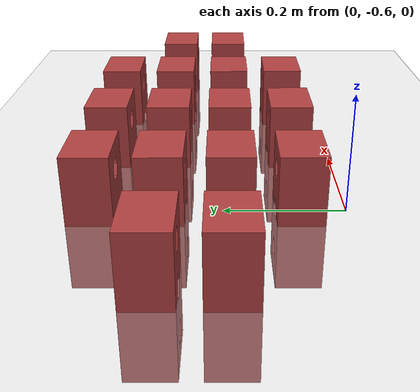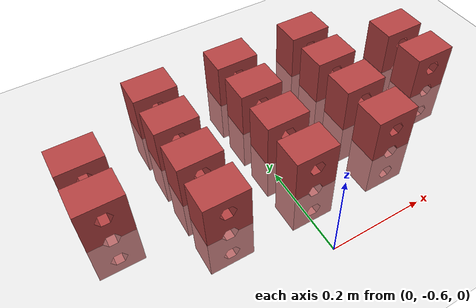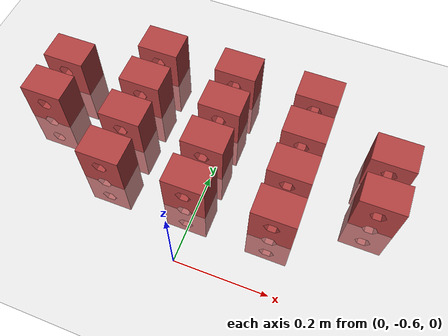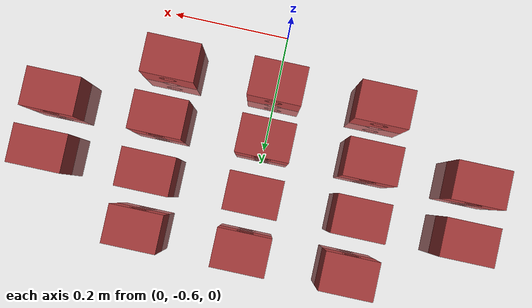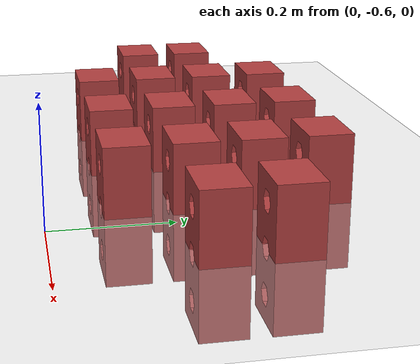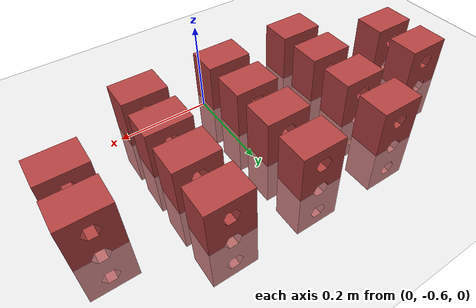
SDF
<sdf version="1.6">
 <world name="default">
  <light name="sun" type="directional">
   <pose>0 0 10 0 -0 0</pose>
   <diffuse>0.8 0.8 0.8 1</diffuse>
   <specular>0.2 0.2 0.2 1</specular>
   <attenuation>
    <range>1000</range>
    <constant>0.9</constant>
    <linear>0.01</linear>
    <quadratic>0.001</quadratic>
   </attenuation>
   <direction>-0.5 0.1 -0.9</direction>
  </light>
  <model name="ground_plane">
   <pose>0.34 -0.32 0.1 -1.57059 1.57059 3.14159</pose>
   <static>1</static>
   <link name="link">
    <collision name="collision">
     <geometry><plane><normal>0 0 1</normal><size>100 100</size></plane></geometry>
     <surface>
      <contact><collide_bitmask>65535</collide_bitmask></contact>
      <friction><ode><mu>100</mu><mu2>50</mu2></ode></friction>
     </surface>
    </collision>
    <visual name="visual">
     <cast_shadows>0</cast_shadows>
     <geometry><plane><normal>0 0 1</normal><size>100 100</size></plane></geometry>
     <material>
      <script><uri>file://media/materials/scripts/gazebo.material</uri><name>Gazebo/Grey</name></script>
     </material>
    </visual>
   </link>
  </model>
  <gravity>0 0 -9.8</gravity>
  <magnetic_field>6e-06 2.3e-05 -4.2e-05</magnetic_field>
  <atmosphere type="adiabatic"/>
  <physics name="default_physics" default="0" type="ode">
   <max_step_size>0.001</max_step_size>
   <real_time_factor>1</real_time_factor>
   <real_time_update_rate>1000</real_time_update_rate>
  </physics>
  <scene><ambient>0.4 0.4 0.4 1</ambient><background>0.7 0.7 0.7 1</background><shadows>1</shadows></scene>
  <audio><device>default</device></audio>
  <spherical_coordinates>
   <surface_model>EARTH_WGS84</surface_model>
   <latitude_deg>0</latitude_deg>
   <longitude_deg>0</longitude_deg>
   <elevation>0</elevation>
   <heading_deg>0</heading_deg>
  </spherical_coordinates>
  <model name="Brick">
   <link name="Brick">
    <inertial>
     <mass>0.1</mass>
     <inertia><ixx>0.0017</ixx><ixy>0</ixy><ixz>0</ixz><iyy>0.0017</iyy><iyz>0</iyz><izz>0.0017</izz></inertia>
    </inertial>
    <collision name="Brick_collision">
     <pose>0 0 0 1.5708 -0 0</pose>
     <geometry><box><size>0.192 0.062 0.086</size></box></geometry>
     <surface>
      <friction><ode><mu>100</mu><mu2>50</mu2><fdir1>0 0 1</fdir1><slip1>0</slip1><slip2>0</slip2></ode></friction>
      <contact><ode><kp>100000</kp><kd>10</kd><max_vel>2</max_vel><min_depth>0.0001</min_depth></ode></contact>
     </surface>
    </collision>
    <visual name="Brick_visual">
     <pose>0 0 0 1.5708 -0 0</pose>
     <geometry><mesh><scale>1 1 1</scale><uri>model://Brick/meshes/Brick_1.STL</uri></mesh></geometry>
     <material>
      <ambient>0.698 0.25 0.25 1</ambient>
      <diffuse>0.698 0.25 0.25 1</diffuse>
      <specular>0.1 0.1 0.1 1</specular>
      <emissive>0 0 0 0</emissive>
     </material>
    </visual>
   </link>
   <pose>0.34 -0.32 0.1 -3.13677 1.57059 1.57583</pose>
  </model>
  <model name="Brick_0">
   <link name="Brick">
    <inertial>
     <mass>0.1</mass>
     <inertia><ixx>0.0017</ixx><ixy>0</ixy><ixz>0</ixz><iyy>0.0017</iyy><iyz>0</iyz><izz>0.0017</izz></inertia>
    </inertial>
    <collision name="Brick_collision">
     <pose>0 0 0 1.5708 -0 0</pose>
     <geometry><box><size>0.192 0.062 0.086</size></box></geometry>
     <surface>
      <friction><ode><mu>100</mu><mu2>50</mu2><fdir1>0 0 1</fdir1><slip1>0</slip1><slip2>0</slip2></ode></friction>
      <contact><ode><kp>100000</kp><kd>10</kd><max_vel>2</max_vel><min_depth>0.0001</min_depth></ode></contact>
     </surface>
    </collision>
    <visual name="Brick_visual">
     <pose>0 0 0 1.5708 -0 0</pose>
     <geometry><mesh><scale>1 1 1</scale><uri>model://Brick/meshes/Brick_1.STL</uri></mesh></geometry>
     <material>
      <ambient>0.698 0.25 0.25 1</ambient>
      <diffuse>0.698 0.25 0.25 1</diffuse>
      <specular>0.1 0.1 0.1 1</specular>
      <emissive>0 0 0 0</emissive>
     </material>
    </visual>
   </link>
   <pose>0.17 -0.32 0.1 3.14149 1.57059 -1.57069</pose>
  </model>
  <model name="Brick_1">
   <link name="Brick">
    <inertial>
     <mass>0.1</mass>
     <inertia><ixx>0.0017</ixx><ixy>0</ixy><ixz>0</ixz><iyy>0.0017</iyy><iyz>0</iyz><izz>0.0017</izz></inertia>
    </inertial>
    <collision name="Brick_collision">
     <pose>0 0 0 1.5708 -0 0</pose>
     <geometry><box><size>0.192 0.062 0.086</size></box></geometry>
     <surface>
      <friction><ode><mu>100</mu><mu2>50</mu2><fdir1>0 0 1</fdir1><slip1>0</slip1><slip2>0</slip2></ode></friction>
      <contact><ode><kp>100000</kp><kd>10</kd><max_vel>2</max_vel><min_depth>0.0001</min_depth></ode></contact>
     </surface>
    </collision>
    <visual name="Brick_visual">
     <pose>0 0 0 1.5708 -0 0</pose>
     <geometry><mesh><scale>1 1 1</scale><uri>model://Brick/meshes/Brick_1.STL</uri></mesh></geometry>
     <material>
      <ambient>0.698 0.25 0.25 1</ambient>
      <diffuse>0.698 0.25 0.25 1</diffuse>
      <specular>0.1 0.1 0.1 1</specular>
      <emissive>0 0 0 0</emissive>
     </material>
    </visual>
   </link>
   <pose>0 -0.32 0.1 3.14159 1.57059 -1.57059</pose>
  </model>
  <model name="Brick_2">
   <link name="Brick">
    <inertial>
     <mass>0.1</mass>
     <inertia><ixx>0.0017</ixx><ixy>0</ixy><ixz>0</ixz><iyy>0.0017</iyy><iyz>0</iyz><izz>0.0017</izz></inertia>
    </inertial>
    <collision name="Brick_collision">
     <pose>0 0 0 1.5708 -0 0</pose>
     <geometry><box><size>0.192 0.062 0.086</size></box></geometry>
     <surface>
      <friction><ode><mu>100</mu><mu2>50</mu2><fdir1>0 0 1</fdir1><slip1>0</slip1><slip2>0</slip2></ode></friction>
      <contact><ode><kp>100000</kp><kd>10</kd><max_vel>2</max_vel><min_depth>0.0001</min_depth></ode></contact>
     </surface>
    </collision>
    <visual name="Brick_visual">
     <pose>0 0 0 1.5708 -0 0</pose>
     <geometry><mesh><scale>1 1 1</scale><uri>model://Brick/meshes/Brick_1.STL</uri></mesh></geometry>
     <material>
      <ambient>0.698 0.25 0.25 1</ambient>
      <diffuse>0.698 0.25 0.25 1</diffuse>
      <specular>0.1 0.1 0.1 1</specular>
      <emissive>0 0 0 0</emissive>
     </material>
    </visual>
   </link>
   <pose>-0.17 -0.32 0.1 3.14159 1.57059 -1.57059</pose>
  </model>
  <model name="Brick_3">
   <link name="Brick">
    <inertial>
     <mass>0.1</mass>
     <inertia><ixx>0.0017</ixx><ixy>0</ixy><ixz>0</ixz><iyy>0.0017</iyy><iyz>0</iyz><izz>0.0017</izz></inertia>
    </inertial>
    <collision name="Brick_collision">
     <pose>0 0 0 1.5708 -0 0</pose>
     <geometry><box><size>0.192 0.062 0.086</size></box></geometry>
     <surface>
      <friction><ode><mu>100</mu><mu2>50</mu2><fdir1>0 0 1</fdir1><slip1>0</slip1><slip2>0</slip2></ode></friction>
      <contact><ode><kp>100000</kp><kd>10</kd><max_vel>2</max_vel><min_depth>0.0001</min_depth></ode></contact>
     </surface>
    </collision>
    <visual name="Brick_visual">
     <pose>0 0 0 1.5708 -0 0</pose>
     <geometry><mesh><scale>1 1 1</scale><uri>model://Brick/meshes/Brick_1.STL</uri></mesh></geometry>
     <material>
      <ambient>0.698 0.25 0.25 1</ambient>
      <diffuse>0.698 0.25 0.25 1</diffuse>
      <specular>0.1 0.1 0.1 1</specular>
      <emissive>0 0 0 0</emissive>
     </material>
    </visual>
   </link>
   <pose>-0.34 -0.32 0.1 3.14159 1.57059 -1.57059</pose>
  </model>
  <model name="Brick_4">
   <link name="Brick">
    <inertial>
     <mass>0.1</mass>
     <inertia><ixx>0.0017</ixx><ixy>0</ixy><ixz>0</ixz><iyy>0.0017</iyy><iyz>0</iyz><izz>0.0017</izz></inertia>
    </inertial>
    <collision name="Brick_collision">
     <pose>0 0 0 1.5708 -0 0</pose>
     <geometry><box><size>0.192 0.062 0.086</size></box></geometry>
     <surface>
      <friction><ode><mu>100</mu><mu2>50</mu2><fdir1>0 0 1</fdir1><slip1>0</slip1><slip2>0</slip2></ode></friction>
      <contact><ode><kp>100000</kp><kd>10</kd><max_vel>2</max_vel><min_depth>0.0001</min_depth></ode></contact>
     </surface>
    </collision>
    <visual name="Brick_visual">
     <pose>0 0 0 1.5708 -0 0</pose>
     <geometry><mesh><scale>1 1 1</scale><uri>model://Brick/meshes/Brick_1.STL</uri></mesh></geometry>
     <material>
      <ambient>0.698 0.25 0.25 1</ambient>
      <diffuse>0.698 0.25 0.25 1</diffuse>
      <specular>0.1 0.1 0.1 1</specular>
      <emissive>0 0 0 0</emissive>
     </material>
    </visual>
   </link>
   <pose>0.34 -0.41 0.1 3.14159 1.57059 -1.57059</pose>
  </model>
  <model name="Brick_5">
   <link name="Brick">
    <inertial>
     <mass>0.1</mass>
     <inertia><ixx>0.0017</ixx><ixy>0</ixy><ixz>0</ixz><iyy>0.0017</iyy><iyz>0</iyz><izz>0.0017</izz></inertia>
    </inertial>
    <collision name="Brick_collision">
     <pose>0 0 0 1.5708 -0 0</pose>
     <geometry><box><size>0.192 0.062 0.086</size></box></geometry>
     <surface>
      <friction><ode><mu>100</mu><mu2>50</mu2><fdir1>0 0 1</fdir1><slip1>0</slip1><slip2>0</slip2></ode></friction>
      <contact><ode><kp>100000</kp><kd>10</kd><max_vel>2</max_vel><min_depth>0.0001</min_depth></ode></contact>
     </surface>
    </collision>
    <visual name="Brick_visual">
     <pose>0 0 0 1.5708 -0 0</pose>
     <geometry><mesh><scale>1 1 1</scale><uri>model://Brick/meshes/Brick_1.STL</uri></mesh></geometry>
     <material>
      <ambient>0.698 0.25 0.25 1</ambient>
      <diffuse>0.698 0.25 0.25 1</diffuse>
      <specular>0.1 0.1 0.1 1</specular>
      <emissive>0 0 0 0</emissive>
     </material>
    </visual>
   </link>
   <pose>0.17 -0.41 0.1 3.14159 1.57059 -1.57059</pose>
  </model>
  <model name="Brick_6">
   <link name="Brick">
    <inertial>
     <mass>0.1</mass>
     <inertia><ixx>0.0017</ixx><ixy>0</ixy><ixz>0</ixz><iyy>0.0017</iyy><iyz>0</iyz><izz>0.0017</izz></inertia>
    </inertial>
    <collision name="Brick_collision">
     <pose>0 0 0 1.5708 -0 0</pose>
     <geometry><box><size>0.192 0.062 0.086</size></box></geometry>
     <surface>
      <friction><ode><mu>100</mu><mu2>50</mu2><fdir1>0 0 1</fdir1><slip1>0</slip1><slip2>0</slip2></ode></friction>
      <contact><ode><kp>100000</kp><kd>10</kd><max_vel>2</max_vel><min_depth>0.0001</min_depth></ode></contact>
     </surface>
    </collision>
    <visual name="Brick_visual">
     <pose>0 0 0 1.5708 -0 0</pose>
     <geometry><mesh><scale>1 1 1</scale><uri>model://Brick/meshes/Brick_1.STL</uri></mesh></geometry>
     <material>
      <ambient>0.698 0.25 0.25 1</ambient>
      <diffuse>0.698 0.25 0.25 1</diffuse>
      <specular>0.1 0.1 0.1 1</specular>
      <emissive>0 0 0 0</emissive>
     </material>
    </visual>
   </link>
   <pose>0 -0.41 0.1 3.14159 1.57059 -1.57059</pose>
  </model>
  <model name="Brick_7">
   <link name="Brick">
    <inertial>
     <mass>0.1</mass>
     <inertia><ixx>0.0017</ixx><ixy>0</ixy><ixz>0</ixz><iyy>0.0017</iyy><iyz>0</iyz><izz>0.0017</izz></inertia>
    </inertial>
    <collision name="Brick_collision">
     <pose>0 0 0 1.5708 -0 0</pose>
     <geometry><box><size>0.192 0.062 0.086</size></box></geometry>
     <surface>
      <friction><ode><mu>100</mu><mu2>50</mu2><fdir1>0 0 1</fdir1><slip1>0</slip1><slip2>0</slip2></ode></friction>
      <contact><ode><kp>100000</kp><kd>10</kd><max_vel>2</max_vel><min_depth>0.0001</min_depth></ode></contact>
     </surface>
    </collision>
    <visual name="Brick_visual">
     <pose>0 0 0 1.5708 -0 0</pose>
     <geometry><mesh><scale>1 1 1</scale><uri>model://Brick/meshes/Brick_1.STL</uri></mesh></geometry>
     <material>
      <ambient>0.698 0.25 0.25 1</ambient>
      <diffuse>0.698 0.25 0.25 1</diffuse>
      <specular>0.1 0.1 0.1 1</specular>
      <emissive>0 0 0 0</emissive>
     </material>
    </visual>
   </link>
   <pose>-0.17 -0.41 0.1 3.14159 1.57059 -1.57059</pose>
  </model>
  <model name="Brick_8">
   <link name="Brick">
    <inertial>
     <mass>0.1</mass>
     <inertia><ixx>0.0017</ixx><ixy>0</ixy><ixz>0</ixz><iyy>0.0017</iyy><iyz>0</iyz><izz>0.0017</izz></inertia>
    </inertial>
    <collision name="Brick_collision">
     <pose>0 0 0 1.5708 -0 0</pose>
     <geometry><box><size>0.192 0.062 0.086</size></box></geometry>
     <surface>
      <friction><ode><mu>100</mu><mu2>50</mu2><fdir1>0 0 1</fdir1><slip1>0</slip1><slip2>0</slip2></ode></friction>
      <contact><ode><kp>100000</kp><kd>10</kd><max_vel>2</max_vel><min_depth>0.0001</min_depth></ode></contact>
     </surface>
    </collision>
    <visual name="Brick_visual">
     <pose>0 0 0 1.5708 -0 0</pose>
     <geometry><mesh><scale>1 1 1</scale><uri>model://Brick/meshes/Brick_1.STL</uri></mesh></geometry>
     <material>
      <ambient>0.698 0.25 0.25 1</ambient>
      <diffuse>0.698 0.25 0.25 1</diffuse>
      <specular>0.1 0.1 0.1 1</specular>
      <emissive>0 0 0 0</emissive>
     </material>
    </visual>
   </link>
   <pose>-0.34 -0.41 0.1 3.14159 1.57059 -1.57059</pose>
  </model>
  <model name="Brick_9">
   <link name="Brick">
    <inertial>
     <mass>0.1</mass>
     <inertia><ixx>0.0017</ixx><ixy>0</ixy><ixz>0</ixz><iyy>0.0017</iyy><iyz>0</iyz><izz>0.0017</izz></inertia>
    </inertial>
    <collision name="Brick_collision">
     <pose>0 0 0 1.5708 -0 0</pose>
     <geometry><box><size>0.192 0.062 0.086</size></box></geometry>
     <surface>
      <friction><ode><mu>100</mu><mu2>50</mu2><fdir1>0 0 1</fdir1><slip1>0</slip1><slip2>0</slip2></ode></friction>
      <contact><ode><kp>100000</kp><kd>10</kd><max_vel>2</max_vel><min_depth>0.0001</min_depth></ode></contact>
     </surface>
    </collision>
    <visual name="Brick_visual">
     <pose>0 0 0 1.5708 -0 0</pose>
     <geometry><mesh><scale>1 1 1</scale><uri>model://Brick/meshes/Brick_1.STL</uri></mesh></geometry>
     <material>
      <ambient>0.698 0.25 0.25 1</ambient>
      <diffuse>0.698 0.25 0.25 1</diffuse>
      <specular>0.1 0.1 0.1 1</specular>
      <emissive>0 0 0 0</emissive>
     </material>
    </visual>
   </link>
   <pose>0.17 -0.23 0.1 3.14159 1.57059 -1.57059</pose>
  </model>
  <model name="Brick_10">
   <link name="Brick">
    <inertial>
     <mass>0.1</mass>
     <inertia><ixx>0.0017</ixx><ixy>0</ixy><ixz>0</ixz><iyy>0.0017</iyy><iyz>0</iyz><izz>0.0017</izz></inertia>
    </inertial>
    <collision name="Brick_collision">
     <pose>0 0 0 1.5708 -0 0</pose>
     <geometry><box><size>0.192 0.062 0.086</size></box></geometry>
     <surface>
      <friction><ode><mu>100</mu><mu2>50</mu2><fdir1>0 0 1</fdir1><slip1>0</slip1><slip2>0</slip2></ode></friction>
      <contact><ode><kp>100000</kp><kd>10</kd><max_vel>2</max_vel><min_depth>0.0001</min_depth></ode></contact>
     </surface>
    </collision>
    <visual name="Brick_visual">
     <pose>0 0 0 1.5708 -0 0</pose>
     <geometry><mesh><scale>1 1 1</scale><uri>model://Brick/meshes/Brick_1.STL</uri></mesh></geometry>
     <material>
      <ambient>0.698 0.25 0.25 1</ambient>
      <diffuse>0.698 0.25 0.25 1</diffuse>
      <specular>0.1 0.1 0.1 1</specular>
      <emissive>0 0 0 0</emissive>
     </material>
    </visual>
   </link>
   <pose>0.17 -0.5 0.1 3.14159 1.57059 -1.57059</pose>
  </model>
  <model name="Brick_11">
   <link name="Brick">
    <inertial>
     <mass>0.1</mass>
     <inertia><ixx>0.0017</ixx><ixy>0</ixy><ixz>0</ixz><iyy>0.0017</iyy><iyz>0</iyz><izz>0.0017</izz></inertia>
    </inertial>
    <collision name="Brick_collision">
     <pose>0 0 0 1.5708 -0 0</pose>
     <geometry><box><size>0.192 0.062 0.086</size></box></geometry>
     <surface>
      <friction><ode><mu>100</mu><mu2>50</mu2><fdir1>0 0 1</fdir1><slip1>0</slip1><slip2>0</slip2></ode></friction>
      <contact><ode><kp>100000</kp><kd>10</kd><max_vel>2</max_vel><min_depth>0.0001</min_depth></ode></contact>
     </surface>
    </collision>
    <visual name="Brick_visual">
     <pose>0 0 0 1.5708 -0 0</pose>
     <geometry><mesh><scale>1 1 1</scale><uri>model://Brick/meshes/Brick_1.STL</uri></mesh></geometry>
     <material>
      <ambient>0.698 0.25 0.25 1</ambient>
      <diffuse>0.698 0.25 0.25 1</diffuse>
      <specular>0.1 0.1 0.1 1</specular>
      <emissive>0 0 0 0</emissive>
     </material>
    </visual>
   </link>
   <pose>0 -0.5 0.1 3.14159 1.57059 -1.57059</pose>
  </model>
  <model name="Brick_12">
   <link name="Brick">
    <inertial>
     <mass>0.1</mass>
     <inertia><ixx>0.0017</ixx><ixy>0</ixy><ixz>0</ixz><iyy>0.0017</iyy><iyz>0</iyz><izz>0.0017</izz></inertia>
    </inertial>
    <collision name="Brick_collision">
     <pose>0 0 0 1.5708 -0 0</pose>
     <geometry><box><size>0.192 0.062 0.086</size></box></geometry>
     <surface>
      <friction><ode><mu>100</mu><mu2>50</mu2><fdir1>0 0 1</fdir1><slip1>0</slip1><slip2>0</slip2></ode></friction>
      <contact><ode><kp>100000</kp><kd>10</kd><max_vel>2</max_vel><min_depth>0.0001</min_depth></ode></contact>
     </surface>
    </collision>
    <visual name="Brick_visual">
     <pose>0 0 0 1.5708 -0 0</pose>
     <geometry><mesh><scale>1 1 1</scale><uri>model://Brick/meshes/Brick_1.STL</uri></mesh></geometry>
     <material>
      <ambient>0.698 0.25 0.25 1</ambient>
      <diffuse>0.698 0.25 0.25 1</diffuse>
      <specular>0.1 0.1 0.1 1</specular>
      <emissive>0 0 0 0</emissive>
     </material>
    </visual>
   </link>
   <pose>-0.17 -0.5 0.1 3.14159 1.57059 -1.57059</pose>
  </model>
  <model name="Brick_13">
   <link name="Brick">
    <inertial>
     <mass>0.1</mass>
     <inertia><ixx>0.0017</ixx><ixy>0</ixy><ixz>0</ixz><iyy>0.0017</iyy><iyz>0</iyz><izz>0.0017</izz></inertia>
    </inertial>
    <collision name="Brick_collision">
     <pose>0 0 0 1.5708 -0 0</pose>
     <geometry><box><size>0.192 0.062 0.086</size></box></geometry>
     <surface>
      <friction><ode><mu>100</mu><mu2>50</mu2><fdir1>0 0 1</fdir1><slip1>0</slip1><slip2>0</slip2></ode></friction>
      <contact><ode><kp>100000</kp><kd>10</kd><max_vel>2</max_vel><min_depth>0.0001</min_depth></ode></contact>
     </surface>
    </collision>
    <visual name="Brick_visual">
     <pose>0 0 0 1.5708 -0 0</pose>
     <geometry><mesh><scale>1 1 1</scale><uri>model://Brick/meshes/Brick_1.STL</uri></mesh></geometry>
     <material>
      <ambient>0.698 0.25 0.25 1</ambient>
      <diffuse>0.698 0.25 0.25 1</diffuse>
      <specular>0.1 0.1 0.1 1</specular>
      <emissive>0 0 0 0</emissive>
     </material>
    </visual>
   </link>
   <pose>0 -0.23 0.1 3.14159 1.57059 -1.57059</pose>
  </model>
  <model name="Brick_14">
   <link name="Brick">
    <inertial>
     <mass>0.1</mass>
     <inertia><ixx>0.0017</ixx><ixy>0</ixy><ixz>0</ixz><iyy>0.0017</iyy><iyz>0</iyz><izz>0.0017</izz></inertia>
    </inertial>
    <collision name="Brick_collision">
     <pose>0 0 0 1.5708 -0 0</pose>
     <geometry><box><size>0.192 0.062 0.086</size></box></geometry>
     <surface>
      <friction><ode><mu>100</mu><mu2>50</mu2><fdir1>0 0 1</fdir1><slip1>0</slip1><slip2>0</slip2></ode></friction>
      <contact><ode><kp>100000</kp><kd>10</kd><max_vel>2</max_vel><min_depth>0.0001</min_depth></ode></contact>
     </surface>
    </collision>
    <visual name="Brick_visual">
     <pose>0 0 0 1.5708 -0 0</pose>
     <geometry><mesh><scale>1 1 1</scale><uri>model://Brick/meshes/Brick_1.STL</uri></mesh></geometry>
     <material>
      <ambient>0.698 0.25 0.25 1</ambient>
      <diffuse>0.698 0.25 0.25 1</diffuse>
      <specular>0.1 0.1 0.1 1</specular>
      <emissive>0 0 0 0</emissive>
     </material>
    </visual>
   </link>
   <pose>-0.17 -0.23 0.1 3.14159 1.57059 -1.57059</pose>
  </model>
 </world>
</sdf>
